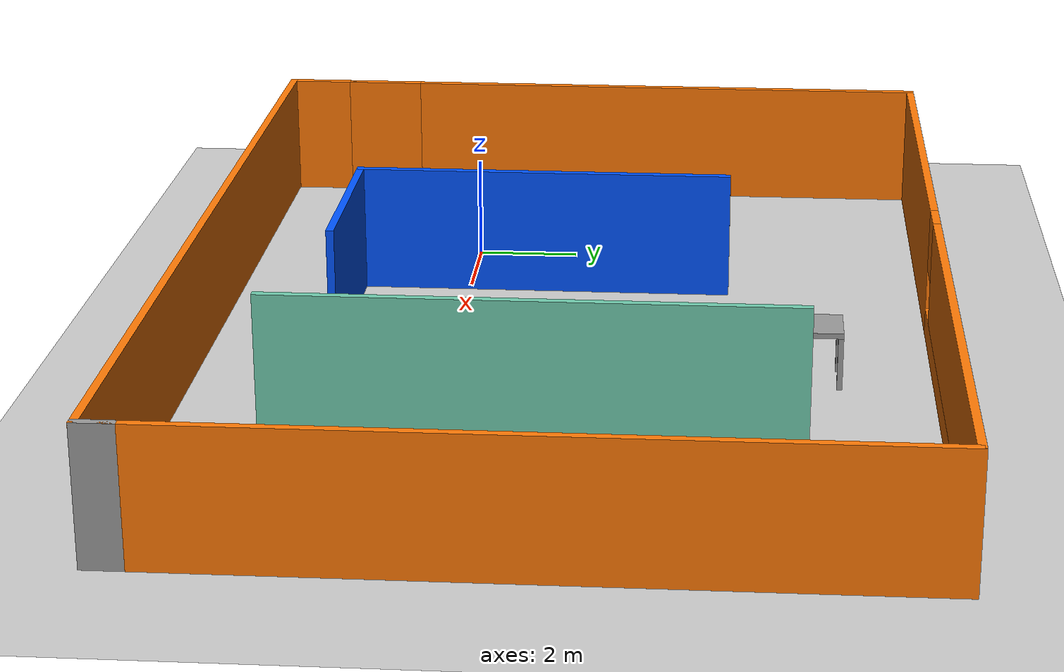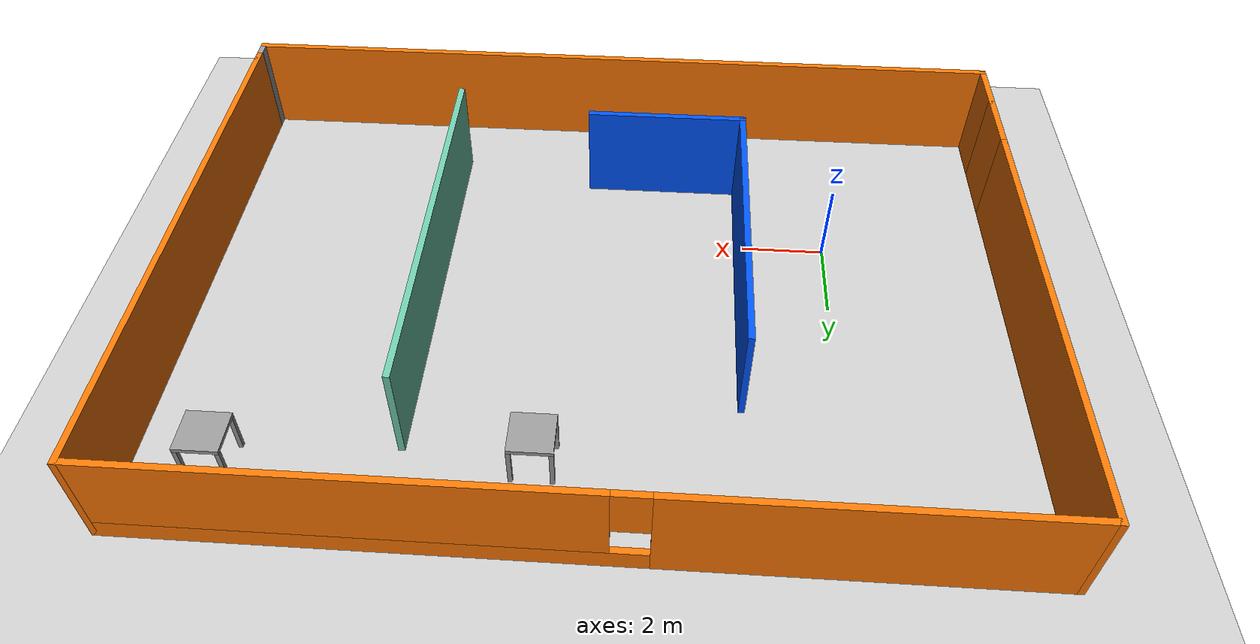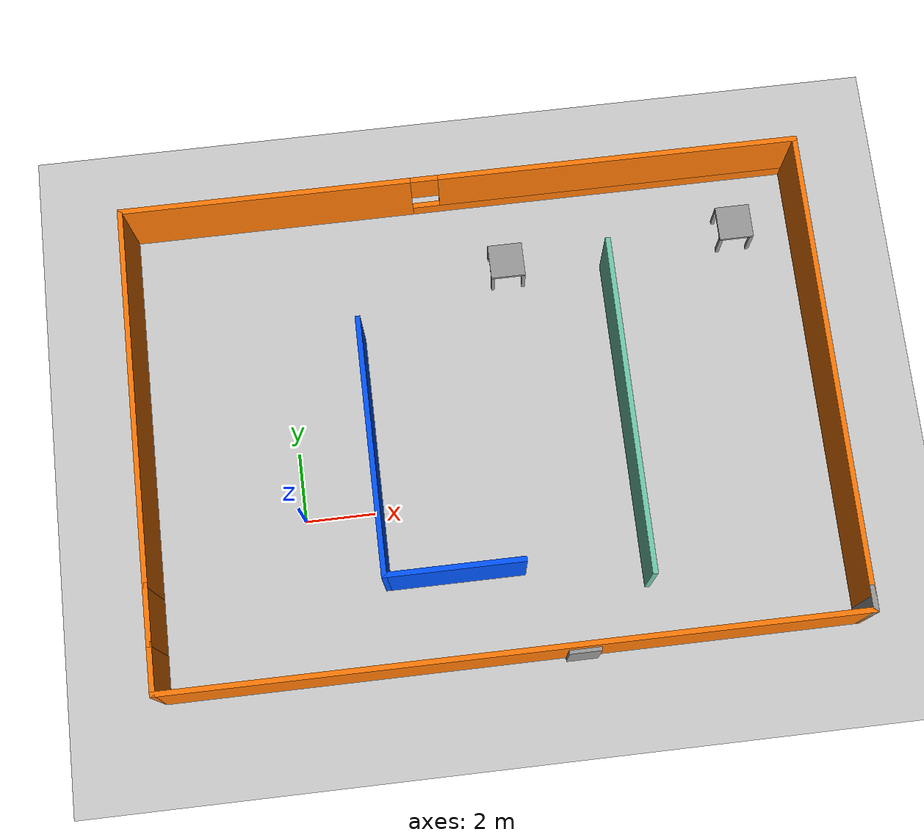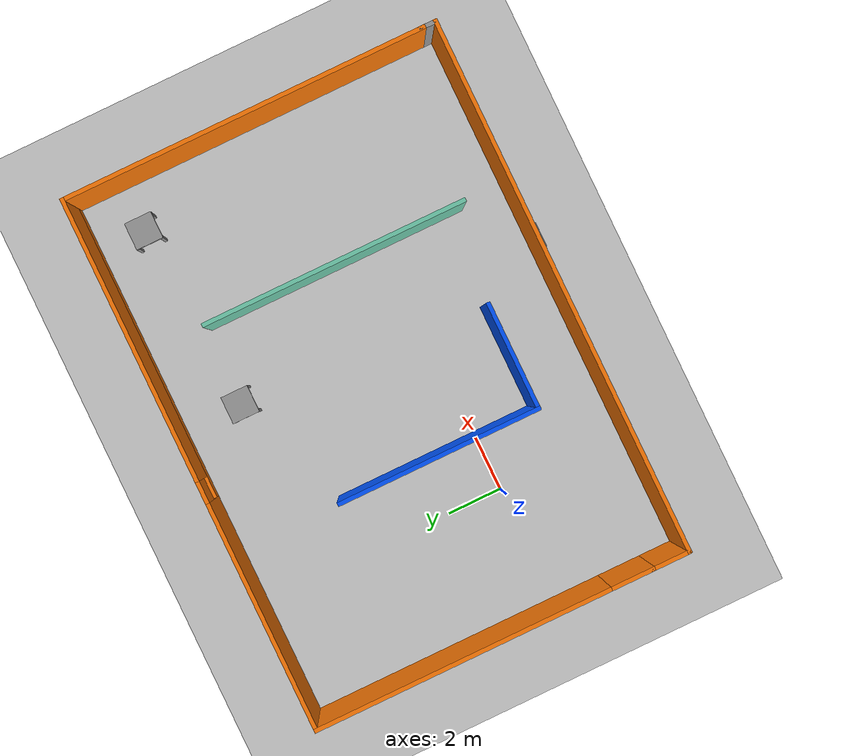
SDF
<sdf version="1.6">
 <world name="default">
  <light name="sun" type="directional">
   <pose>0 0 10 0 -0 0</pose>
   <diffuse>0.8 0.8 0.8 1</diffuse>
   <specular>0.2 0.2 0.2 1</specular>
   <attenuation>
    <range>1000</range>
    <constant>0.9</constant>
    <linear>0.01</linear>
    <quadratic>0.001</quadratic>
   </attenuation>
   <direction>-0.5 0.1 -0.9</direction>
  </light>
  <model name="ground_plane">
   <static>1</static>
   <link name="link">
    <collision name="collision">
     <geometry><plane><normal>0 0 1</normal><size>100 100</size></plane></geometry>
     <surface>
      <contact><collide_bitmask>65535</collide_bitmask></contact>
      <friction><ode><mu>100</mu><mu2>50</mu2></ode></friction>
     </surface>
    </collision>
    <visual name="visual">
     <cast_shadows>0</cast_shadows>
     <geometry><plane><normal>0 0 1</normal><size>100 100</size></plane></geometry>
     <material>
      <script><uri>file://media/materials/scripts/gazebo.material</uri><name>Gazebo/Grey</name></script>
     </material>
    </visual>
   </link>
  </model>
  <gravity>0 0 -9.8</gravity>
  <magnetic_field>6e-06 2.3e-05 -4.2e-05</magnetic_field>
  <atmosphere type="adiabatic"/>
  <physics name="default_physics" default="0" type="ode">
   <max_step_size>0.001</max_step_size>
   <real_time_factor>1</real_time_factor>
   <real_time_update_rate>1000</real_time_update_rate>
  </physics>
  <scene><ambient>0.4 0.4 0.4 1</ambient><background>0.7 0.7 0.7 1</background><shadows>1</shadows></scene>
  <spherical_coordinates>
   <surface_model>EARTH_WGS84</surface_model>
   <latitude_deg>0</latitude_deg>
   <longitude_deg>0</longitude_deg>
   <elevation>0</elevation>
   <heading_deg>0</heading_deg>
  </spherical_coordinates>
  <model name="room">
   <pose>5.50005 2.2334 0 0 -0 0</pose>
   <link name="Door_0">
    <collision name="Door_0_Collision">
     <geometry><box><size>0.9 0.17 2</size></box></geometry>
     <pose>0 0 1 0 -0 0</pose>
    </collision>
    <visual name="Door_0_Visual">
     <pose>0 0 1 0 -0 0</pose>
     <geometry><box><size>0.9 0.17 2</size></box></geometry>
     <material>
      <script><uri>file://media/materials/scripts/gazebo.material</uri><name>Gazebo/Grey</name></script>
     </material>
    </visual>
    <pose>1.89637 -7.00127 0 0 -0 0</pose>
   </link>
   <link name="Wall_10">
    <collision name="Wall_10_Collision">
     <geometry><box><size>11 0.15 2.5</size></box></geometry>
     <pose>0 0 1.25 0 -0 0</pose>
    </collision>
    <visual name="Wall_10_Visual">
     <pose>0 0 1.25 0 -0 0</pose>
     <geometry><box><size>11 0.15 2.5</size></box></geometry>
     <material>
      <script><uri>file://media/materials/scripts/gazebo.material</uri><name>Gazebo/Grey</name></script>
      <ambient>0.996078 0.47451 0.0196078 1</ambient>
     </material>
     <meta><layer>0</layer></meta>
    </visual>
    <pose>-9.8 1.475 0 0 -0 1.5708</pose>
   </link>
   <link name="Wall_11">
    <pose>0 6.9 0 0 -0 0</pose>
    <visual name="Wall_11_Visual_0">
     <pose>-5.64798 0 1.25 0 -0 0</pose>
     <geometry><box><size>8.45404 0.15 2.5</size></box></geometry>
     <material>
      <script><uri>file://media/materials/scripts/gazebo.material</uri><name>Gazebo/Grey</name></script>
      <ambient>0.996078 0.47451 0.0196078 1</ambient>
     </material>
     <meta><layer>0</layer></meta>
    </visual>
    <collision name="Wall_11_Collision_0">
     <geometry><box><size>8.45404 0.15 2.5</size></box></geometry>
     <pose>-5.64798 0 1.25 0 -0 0</pose>
    </collision>
    <visual name="Wall_11_Visual_1">
     <pose>4.22702 0 0.25 0 -0 0</pose>
     <geometry><box><size>11.296 0.15 0.5</size></box></geometry>
     <material>
      <script><uri>file://media/materials/scripts/gazebo.material</uri><name>Gazebo/Grey</name></script>
      <ambient>0.996078 0.47451 0.0196078 1</ambient>
     </material>
     <meta><layer>0</layer></meta>
    </visual>
    <collision name="Wall_11_Collision_1">
     <geometry><box><size>11.296 0.15 0.5</size></box></geometry>
     <pose>4.22702 0 0.25 0 -0 0</pose>
    </collision>
    <visual name="Wall_11_Visual_2">
     <pose>4.62702 0 1.5 0 -0 0</pose>
     <geometry><box><size>10.496 0.15 2</size></box></geometry>
     <material>
      <script><uri>file://media/materials/scripts/gazebo.material</uri><name>Gazebo/Grey</name></script>
      <ambient>0.996078 0.47451 0.0196078 1</ambient>
     </material>
     <meta><layer>0</layer></meta>
    </visual>
    <collision name="Wall_11_Collision_2">
     <geometry><box><size>10.496 0.15 2</size></box></geometry>
     <pose>4.62702 0 1.5 0 -0 0</pose>
    </collision>
    <visual name="Wall_11_Visual_3">
     <pose>-1.02096 0 1.9 0 -0 0</pose>
     <geometry><box><size>0.8 0.15 1.2</size></box></geometry>
     <material>
      <script><uri>file://media/materials/scripts/gazebo.material</uri><name>Gazebo/Grey</name></script>
      <ambient>0.996078 0.47451 0.0196078 1</ambient>
     </material>
     <meta><layer>0</layer></meta>
    </visual>
    <collision name="Wall_11_Collision_3">
     <geometry><box><size>0.8 0.15 1.2</size></box></geometry>
     <pose>-1.02096 0 1.9 0 -0 0</pose>
    </collision>
   </link>
   <link name="Wall_12">
    <collision name="Wall_12_Collision">
     <geometry><box><size>13.5 0.15 2.5</size></box></geometry>
     <pose>0 0 1.25 0 -0 0</pose>
    </collision>
    <visual name="Wall_12_Visual">
     <pose>0 0 1.25 0 -0 0</pose>
     <geometry><box><size>13.5 0.15 2.5</size></box></geometry>
     <material>
      <script><uri>file://media/materials/scripts/gazebo.material</uri><name>Gazebo/Grey</name></script>
      <ambient>0.996078 0.47451 0.0196078 1</ambient>
     </material>
     <meta><layer>0</layer></meta>
    </visual>
    <pose>9.8 0.225 0 0 0 -1.5708</pose>
   </link>
   <link name="Wall_14">
    <collision name="Wall_14_Collision">
     <geometry><box><size>7.5 0.15 2.5</size></box></geometry>
     <pose>0 0 1.25 0 -0 0</pose>
    </collision>
    <visual name="Wall_14_Visual">
     <pose>0 0 1.25 0 -0 0</pose>
     <geometry><box><size>7.5 0.15 2.5</size></box></geometry>
     <material>
      <script><uri>file://media/materials/scripts/gazebo.material</uri><name>Gazebo/Grey</name></script>
      <ambient>0 0.333333 1 1</ambient>
     </material>
     <meta><layer>0</layer></meta>
    </visual>
    <pose>-3.3266 -0.747922 0 0 0 -1.5708</pose>
   </link>
   <link name="Wall_15">
    <collision name="Wall_15_Collision">
     <geometry><box><size>4 0.15 2.5</size></box></geometry>
     <pose>0 0 1.25 0 -0 0</pose>
    </collision>
    <visual name="Wall_15_Visual">
     <pose>0 0 1.25 0 -0 0</pose>
     <geometry><box><size>4 0.15 2.5</size></box></geometry>
     <material>
      <script><uri>file://media/materials/scripts/gazebo.material</uri><name>Gazebo/Grey</name></script>
      <ambient>0 0.333333 1 1</ambient>
     </material>
     <meta><layer>0</layer></meta>
    </visual>
    <pose>-1.4016 -4.42292 0 0 -0 0</pose>
   </link>
   <link name="Wall_17">
    <collision name="Wall_17_Collision">
     <geometry><box><size>9.75 0.15 2.5</size></box></geometry>
     <pose>0 0 1.25 0 -0 0</pose>
    </collision>
    <visual name="Wall_17_Visual">
     <pose>0 0 1.25 0 -0 0</pose>
     <geometry><box><size>9.75 0.15 2.5</size></box></geometry>
     <material>
      <script><uri>file://media/materials/scripts/gazebo.material</uri><name>Gazebo/Grey</name></script>
      <ambient>0.435294 0.796078 0.67451 1</ambient>
     </material>
     <meta><layer>0</layer></meta>
    </visual>
    <pose>4.01379 -0.367201 0 0 0 -1.5708</pose>
   </link>
   <link name="Wall_19">
    <collision name="Wall_19_Collision">
     <geometry><box><size>19.75 0.15 2.5</size></box></geometry>
     <pose>0 0 1.25 0 -0 0</pose>
    </collision>
    <visual name="Wall_19_Visual">
     <pose>0 0 1.25 0 -0 0</pose>
     <geometry><box><size>19.75 0.15 2.5</size></box></geometry>
     <material>
      <script><uri>file://media/materials/scripts/gazebo.material</uri><name>Gazebo/Grey</name></script>
      <ambient>0.996078 0.47451 0.0196078 1</ambient>
     </material>
     <meta><layer>0</layer></meta>
    </visual>
    <pose>0 -6.9 0 0 -0 0</pose>
   </link>
   <link name="Wall_20">
    <collision name="Wall_20_Collision">
     <geometry><box><size>0.75 0.15 2.5</size></box></geometry>
     <pose>0 0 1.25 0 -0 0</pose>
    </collision>
    <visual name="Wall_20_Visual">
     <pose>0 0 1.25 0 -0 0</pose>
     <geometry><box><size>0.75 0.15 2.5</size></box></geometry>
     <material>
      <script><uri>file://media/materials/scripts/gazebo.material</uri><name>Gazebo/Grey</name></script>
      <ambient>1 1 1 1</ambient>
     </material>
     <meta><layer>0</layer></meta>
    </visual>
    <pose>9.8 -6.6 0 0 -0 1.5708</pose>
   </link>
   <link name="Wall_7">
    <collision name="Wall_7_Collision">
     <geometry><box><size>1.5 0.15 2.5</size></box></geometry>
     <pose>0 0 1.25 0 -0 0</pose>
    </collision>
    <visual name="Wall_7_Visual">
     <pose>0 0 1.25 0 -0 0</pose>
     <geometry><box><size>1.5 0.15 2.5</size></box></geometry>
     <material>
      <script><uri>file://media/materials/scripts/gazebo.material</uri><name>Gazebo/Grey</name></script>
      <ambient>0.996078 0.47451 0.0196078 1</ambient>
     </material>
     <meta><layer>0</layer></meta>
    </visual>
    <pose>-9.8 -6.225 0 0 -0 1.5708</pose>
   </link>
   <link name="Wall_9">
    <collision name="Wall_9_Collision">
     <geometry><box><size>1.75 0.15 2.5</size></box></geometry>
     <pose>0 0 1.25 0 -0 0</pose>
    </collision>
    <visual name="Wall_9_Visual">
     <pose>0 0 1.25 0 -0 0</pose>
     <geometry><box><size>1.75 0.15 2.5</size></box></geometry>
     <material>
      <script><uri>file://media/materials/scripts/gazebo.material</uri><name>Gazebo/Grey</name></script>
      <ambient>0.996078 0.47451 0.0196078 1</ambient>
     </material>
     <meta><layer>0</layer></meta>
    </visual>
    <pose>-9.8 -4.75 0 0 -0 1.5708</pose>
   </link>
   <static>1</static>
  </model>
  <model name="Table">
   <link name="link_0">
    <pose>-0.45 -0.45 -0.11 0 -0 0</pose>
    <inertial>
     <mass>1</mass>
     <inertia>
      <ixx>0.166667</ixx>
      <ixy>0</ixy>
      <ixz>0</ixz>
      <iyy>0.166667</iyy>
      <iyz>0</iyz>
      <izz>0.166667</izz>
     </inertia>
    </inertial>
    <visual name="visual">
     <geometry><box><size>0.1 0.1 1</size></box></geometry>
     <material>
      <lighting>1</lighting>
      <script><uri>file://media/materials/scripts/gazebo.material</uri><name>Gazebo/Grey</name></script>
      <shader type="pixel"><normal_map>__default__</normal_map></shader>
      <ambient>0.3 0.3 0.3 1</ambient>
      <diffuse>0.7 0.7 0.7 1</diffuse>
      <specular>0.01 0.01 0.01 1</specular>
      <emissive>0 0 0 1</emissive>
     </material>
    </visual>
    <collision name="collision">
     <geometry><box><size>0.1 0.1 1</size></box></geometry>
     <surface>
      <friction>
       <ode><mu>1</mu><mu2>1</mu2><fdir1>0 0 0</fdir1><slip1>0</slip1><slip2>0</slip2></ode>
       <torsional>
        <coefficient>1</coefficient>
        <patch_radius>0</patch_radius>
        <surface_radius>0</surface_radius>
        <use_patch_radius>1</use_patch_radius>
        <ode><slip>0</slip></ode>
       </torsional>
      </friction>
      <bounce><restitution_coefficient>0</restitution_coefficient><threshold>1e+06</threshold></bounce>
      <contact>
       <collide_without_contact>0</collide_without_contact>
       <collide_without_contact_bitmask>1</collide_without_contact_bitmask>
       <collide_bitmask>1</collide_bitmask>
       <ode>
        <soft_cfm>0</soft_cfm>
        <soft_erp>0.2</soft_erp>
        <kp>1e+13</kp>
        <kd>1</kd>
        <max_vel>0.01</max_vel>
        <min_depth>0</min_depth>
       </ode>
       <bullet>
        <split_impulse>1</split_impulse>
        <split_impulse_penetration_threshold>-0.01</split_impulse_penetration_threshold>
        <soft_cfm>0</soft_cfm>
        <soft_erp>0.2</soft_erp>
        <kp>1e+13</kp>
        <kd>1</kd>
       </bullet>
      </contact>
     </surface>
    </collision>
   </link>
   <link name="link_0_clone">
    <pose>0.449999 -0.45 -0.11 0 -0 0</pose>
    <inertial>
     <mass>1</mass>
     <inertia>
      <ixx>0.166667</ixx>
      <ixy>0</ixy>
      <ixz>0</ixz>
      <iyy>0.166667</iyy>
      <iyz>0</iyz>
      <izz>0.166667</izz>
     </inertia>
    </inertial>
    <visual name="visual">
     <geometry><box><size>0.1 0.1 1</size></box></geometry>
     <material>
      <lighting>1</lighting>
      <script><uri>file://media/materials/scripts/gazebo.material</uri><name>Gazebo/Grey</name></script>
      <shader type="pixel"><normal_map>__default__</normal_map></shader>
      <ambient>0.3 0.3 0.3 1</ambient>
      <diffuse>0.7 0.7 0.7 1</diffuse>
      <specular>0.01 0.01 0.01 1</specular>
      <emissive>0 0 0 1</emissive>
     </material>
    </visual>
    <collision name="collision">
     <geometry><box><size>0.1 0.1 1</size></box></geometry>
     <surface>
      <friction>
       <ode><mu>1</mu><mu2>1</mu2><fdir1>0 0 0</fdir1><slip1>0</slip1><slip2>0</slip2></ode>
       <torsional>
        <coefficient>1</coefficient>
        <patch_radius>0</patch_radius>
        <surface_radius>0</surface_radius>
        <use_patch_radius>1</use_patch_radius>
        <ode><slip>0</slip></ode>
       </torsional>
      </friction>
      <bounce><restitution_coefficient>0</restitution_coefficient><threshold>1e+06</threshold></bounce>
      <contact>
       <collide_without_contact>0</collide_without_contact>
       <collide_without_contact_bitmask>1</collide_without_contact_bitmask>
       <collide_bitmask>1</collide_bitmask>
       <ode>
        <soft_cfm>0</soft_cfm>
        <soft_erp>0.2</soft_erp>
        <kp>1e+13</kp>
        <kd>1</kd>
        <max_vel>0.01</max_vel>
        <min_depth>0</min_depth>
       </ode>
       <bullet>
        <split_impulse>1</split_impulse>
        <split_impulse_penetration_threshold>-0.01</split_impulse_penetration_threshold>
        <soft_cfm>0</soft_cfm>
        <soft_erp>0.2</soft_erp>
        <kp>1e+13</kp>
        <kd>1</kd>
       </bullet>
      </contact>
     </surface>
    </collision>
   </link>
   <link name="link_0_clone_0">
    <pose>0.449999 0.45 -0.11 0 -0 0</pose>
    <inertial>
     <mass>1</mass>
     <inertia>
      <ixx>0.166667</ixx>
      <ixy>0</ixy>
      <ixz>0</ixz>
      <iyy>0.166667</iyy>
      <iyz>0</iyz>
      <izz>0.166667</izz>
     </inertia>
    </inertial>
    <visual name="visual">
     <geometry><box><size>0.1 0.1 1</size></box></geometry>
     <material>
      <lighting>1</lighting>
      <script><uri>file://media/materials/scripts/gazebo.material</uri><name>Gazebo/Grey</name></script>
      <shader type="pixel"><normal_map>__default__</normal_map></shader>
      <ambient>0.3 0.3 0.3 1</ambient>
      <diffuse>0.7 0.7 0.7 1</diffuse>
      <specular>0.01 0.01 0.01 1</specular>
      <emissive>0 0 0 1</emissive>
     </material>
    </visual>
    <collision name="collision">
     <geometry><box><size>0.1 0.1 1</size></box></geometry>
     <surface>
      <friction>
       <ode><mu>1</mu><mu2>1</mu2><fdir1>0 0 0</fdir1><slip1>0</slip1><slip2>0</slip2></ode>
       <torsional>
        <coefficient>1</coefficient>
        <patch_radius>0</patch_radius>
        <surface_radius>0</surface_radius>
        <use_patch_radius>1</use_patch_radius>
        <ode><slip>0</slip></ode>
       </torsional>
      </friction>
      <bounce><restitution_coefficient>0</restitution_coefficient><threshold>1e+06</threshold></bounce>
      <contact>
       <collide_without_contact>0</collide_without_contact>
       <collide_without_contact_bitmask>1</collide_without_contact_bitmask>
       <collide_bitmask>1</collide_bitmask>
       <ode>
        <soft_cfm>0</soft_cfm>
        <soft_erp>0.2</soft_erp>
        <kp>1e+13</kp>
        <kd>1</kd>
        <max_vel>0.01</max_vel>
        <min_depth>0</min_depth>
       </ode>
       <bullet>
        <split_impulse>1</split_impulse>
        <split_impulse_penetration_threshold>-0.01</split_impulse_penetration_threshold>
        <soft_cfm>0</soft_cfm>
        <soft_erp>0.2</soft_erp>
        <kp>1e+13</kp>
        <kd>1</kd>
       </bullet>
      </contact>
     </surface>
    </collision>
   </link>
   <link name="link_0_clone_1">
    <pose>-0.45 0.45 -0.11 0 -0 0</pose>
    <inertial>
     <mass>1</mass>
     <inertia>
      <ixx>0.166667</ixx>
      <ixy>0</ixy>
      <ixz>0</ixz>
      <iyy>0.166667</iyy>
      <iyz>0</iyz>
      <izz>0.166667</izz>
     </inertia>
    </inertial>
    <visual name="visual">
     <geometry><box><size>0.1 0.1 1</size></box></geometry>
     <material>
      <lighting>1</lighting>
      <script><uri>file://media/materials/scripts/gazebo.material</uri><name>Gazebo/Grey</name></script>
      <shader type="pixel"><normal_map>__default__</normal_map></shader>
      <ambient>0.3 0.3 0.3 1</ambient>
      <diffuse>0.7 0.7 0.7 1</diffuse>
      <specular>0.01 0.01 0.01 1</specular>
      <emissive>0 0 0 1</emissive>
     </material>
    </visual>
    <collision name="collision">
     <geometry><box><size>0.1 0.1 1</size></box></geometry>
     <surface>
      <friction>
       <ode><mu>1</mu><mu2>1</mu2><fdir1>0 0 0</fdir1><slip1>0</slip1><slip2>0</slip2></ode>
       <torsional>
        <coefficient>1</coefficient>
        <patch_radius>0</patch_radius>
        <surface_radius>0</surface_radius>
        <use_patch_radius>1</use_patch_radius>
        <ode><slip>0</slip></ode>
       </torsional>
      </friction>
      <bounce><restitution_coefficient>0</restitution_coefficient><threshold>1e+06</threshold></bounce>
      <contact>
       <collide_without_contact>0</collide_without_contact>
       <collide_without_contact_bitmask>1</collide_without_contact_bitmask>
       <collide_bitmask>1</collide_bitmask>
       <ode>
        <soft_cfm>0</soft_cfm>
        <soft_erp>0.2</soft_erp>
        <kp>1e+13</kp>
        <kd>1</kd>
        <max_vel>0.01</max_vel>
        <min_depth>0</min_depth>
       </ode>
       <bullet>
        <split_impulse>1</split_impulse>
        <split_impulse_penetration_threshold>-0.01</split_impulse_penetration_threshold>
        <soft_cfm>0</soft_cfm>
        <soft_erp>0.2</soft_erp>
        <kp>1e+13</kp>
        <kd>1</kd>
       </bullet>
      </contact>
     </surface>
    </collision>
   </link>
   <link name="link_1">
    <pose>-0 0 0.44 0 -0 0</pose>
    <inertial>
     <mass>1</mass>
     <inertia>
      <ixx>0.166667</ixx>
      <ixy>0</ixy>
      <ixz>0</ixz>
      <iyy>0.166667</iyy>
      <iyz>0</iyz>
      <izz>0.166667</izz>
     </inertia>
    </inertial>
    <visual name="visual">
     <geometry><box><size>1 1 0.1</size></box></geometry>
     <material>
      <lighting>1</lighting>
      <script><uri>file://media/materials/scripts/gazebo.material</uri><name>Gazebo/Grey</name></script>
      <shader type="pixel"><normal_map>__default__</normal_map></shader>
      <ambient>0.3 0.3 0.3 1</ambient>
      <diffuse>0.7 0.7 0.7 1</diffuse>
      <specular>0.01 0.01 0.01 1</specular>
      <emissive>0 0 0 1</emissive>
     </material>
    </visual>
    <collision name="collision">
     <geometry><box><size>1 1 0.1</size></box></geometry>
     <surface>
      <friction>
       <ode><mu>1</mu><mu2>1</mu2><fdir1>0 0 0</fdir1><slip1>0</slip1><slip2>0</slip2></ode>
       <torsional>
        <coefficient>1</coefficient>
        <patch_radius>0</patch_radius>
        <surface_radius>0</surface_radius>
        <use_patch_radius>1</use_patch_radius>
        <ode><slip>0</slip></ode>
       </torsional>
      </friction>
      <bounce><restitution_coefficient>0</restitution_coefficient><threshold>1e+06</threshold></bounce>
      <contact>
       <collide_without_contact>0</collide_without_contact>
       <collide_without_contact_bitmask>1</collide_without_contact_bitmask>
       <collide_bitmask>1</collide_bitmask>
       <ode>
        <soft_cfm>0</soft_cfm>
        <soft_erp>0.2</soft_erp>
        <kp>1e+13</kp>
        <kd>1</kd>
        <max_vel>0.01</max_vel>
        <min_depth>0</min_depth>
       </ode>
       <bullet>
        <split_impulse>1</split_impulse>
        <split_impulse_penetration_threshold>-0.01</split_impulse_penetration_threshold>
        <soft_cfm>0</soft_cfm>
        <soft_erp>0.2</soft_erp>
        <kp>1e+13</kp>
        <kd>1</kd>
       </bullet>
      </contact>
     </surface>
    </collision>
   </link>
   <joint name="link_1_JOINT_0" type="fixed">
    <parent>link_1</parent>
    <child>link_0</child>
    <physics>
     <ode><limit><cfm>0</cfm><erp>0.2</erp></limit><suspension><cfm>0</cfm><erp>0.2</erp></suspension></ode>
    </physics>
   </joint>
   <joint name="link_1_JOINT_1" type="fixed">
    <parent>link_1</parent>
    <child>link_0_clone</child>
    <physics>
     <ode><limit><cfm>0</cfm><erp>0.2</erp></limit><suspension><cfm>0</cfm><erp>0.2</erp></suspension></ode>
    </physics>
   </joint>
   <joint name="link_1_JOINT_2" type="fixed">
    <parent>link_1</parent>
    <child>link_0_clone_1</child>
    <pose>0 0 0 -0.05 0 0</pose>
    <physics>
     <ode><limit><cfm>0</cfm><erp>0.2</erp></limit><suspension><cfm>0</cfm><erp>0.2</erp></suspension></ode>
    </physics>
   </joint>
   <joint name="link_1_JOINT_3" type="fixed">
    <parent>link_1</parent>
    <child>link_0_clone_0</child>
    <pose>0 0 0 -0.02 0 0</pose>
    <physics>
     <ode><limit><cfm>0</cfm><erp>0.2</erp></limit><suspension><cfm>0</cfm><erp>0.2</erp></suspension></ode>
    </physics>
   </joint>
   <static>0</static>
   <pose>13.4593 7.289 0.609999 -0 3e-06 -3.7e-05</pose>
  </model>
  <model name="Table_0">
   <link name="link_0">
    <pose>-0.45 -0.45 -0.11 0 -0 0</pose>
    <inertial>
     <mass>1</mass>
     <inertia>
      <ixx>0.166667</ixx>
      <ixy>0</ixy>
      <ixz>0</ixz>
      <iyy>0.166667</iyy>
      <iyz>0</iyz>
      <izz>0.166667</izz>
     </inertia>
    </inertial>
    <visual name="visual">
     <geometry><box><size>0.1 0.1 1</size></box></geometry>
     <material>
      <lighting>1</lighting>
      <script><uri>file://media/materials/scripts/gazebo.material</uri><name>Gazebo/Grey</name></script>
      <shader type="pixel"><normal_map>__default__</normal_map></shader>
      <ambient>0.3 0.3 0.3 1</ambient>
      <diffuse>0.7 0.7 0.7 1</diffuse>
      <specular>0.01 0.01 0.01 1</specular>
      <emissive>0 0 0 1</emissive>
     </material>
    </visual>
    <collision name="collision">
     <geometry><box><size>0.1 0.1 1</size></box></geometry>
     <surface>
      <friction>
       <ode><mu>1</mu><mu2>1</mu2><fdir1>0 0 0</fdir1><slip1>0</slip1><slip2>0</slip2></ode>
       <torsional>
        <coefficient>1</coefficient>
        <patch_radius>0</patch_radius>
        <surface_radius>0</surface_radius>
        <use_patch_radius>1</use_patch_radius>
        <ode><slip>0</slip></ode>
       </torsional>
      </friction>
      <bounce><restitution_coefficient>0</restitution_coefficient><threshold>1e+06</threshold></bounce>
      <contact>
       <collide_without_contact>0</collide_without_contact>
       <collide_without_contact_bitmask>1</collide_without_contact_bitmask>
       <collide_bitmask>1</collide_bitmask>
       <ode>
        <soft_cfm>0</soft_cfm>
        <soft_erp>0.2</soft_erp>
        <kp>1e+13</kp>
        <kd>1</kd>
        <max_vel>0.01</max_vel>
        <min_depth>0</min_depth>
       </ode>
       <bullet>
        <split_impulse>1</split_impulse>
        <split_impulse_penetration_threshold>-0.01</split_impulse_penetration_threshold>
        <soft_cfm>0</soft_cfm>
        <soft_erp>0.2</soft_erp>
        <kp>1e+13</kp>
        <kd>1</kd>
       </bullet>
      </contact>
     </surface>
    </collision>
   </link>
   <link name="link_0_clone">
    <pose>0.449999 -0.45 -0.11 0 -0 0</pose>
    <inertial>
     <mass>1</mass>
     <inertia>
      <ixx>0.166667</ixx>
      <ixy>0</ixy>
      <ixz>0</ixz>
      <iyy>0.166667</iyy>
      <iyz>0</iyz>
      <izz>0.166667</izz>
     </inertia>
    </inertial>
    <visual name="visual">
     <geometry><box><size>0.1 0.1 1</size></box></geometry>
     <material>
      <lighting>1</lighting>
      <script><uri>file://media/materials/scripts/gazebo.material</uri><name>Gazebo/Grey</name></script>
      <shader type="pixel"><normal_map>__default__</normal_map></shader>
      <ambient>0.3 0.3 0.3 1</ambient>
      <diffuse>0.7 0.7 0.7 1</diffuse>
      <specular>0.01 0.01 0.01 1</specular>
      <emissive>0 0 0 1</emissive>
     </material>
    </visual>
    <collision name="collision">
     <geometry><box><size>0.1 0.1 1</size></box></geometry>
     <surface>
      <friction>
       <ode><mu>1</mu><mu2>1</mu2><fdir1>0 0 0</fdir1><slip1>0</slip1><slip2>0</slip2></ode>
       <torsional>
        <coefficient>1</coefficient>
        <patch_radius>0</patch_radius>
        <surface_radius>0</surface_radius>
        <use_patch_radius>1</use_patch_radius>
        <ode><slip>0</slip></ode>
       </torsional>
      </friction>
      <bounce><restitution_coefficient>0</restitution_coefficient><threshold>1e+06</threshold></bounce>
      <contact>
       <collide_without_contact>0</collide_without_contact>
       <collide_without_contact_bitmask>1</collide_without_contact_bitmask>
       <collide_bitmask>1</collide_bitmask>
       <ode>
        <soft_cfm>0</soft_cfm>
        <soft_erp>0.2</soft_erp>
        <kp>1e+13</kp>
        <kd>1</kd>
        <max_vel>0.01</max_vel>
        <min_depth>0</min_depth>
       </ode>
       <bullet>
        <split_impulse>1</split_impulse>
        <split_impulse_penetration_threshold>-0.01</split_impulse_penetration_threshold>
        <soft_cfm>0</soft_cfm>
        <soft_erp>0.2</soft_erp>
        <kp>1e+13</kp>
        <kd>1</kd>
       </bullet>
      </contact>
     </surface>
    </collision>
   </link>
   <link name="link_0_clone_0">
    <pose>0.449999 0.45 -0.11 0 -0 0</pose>
    <inertial>
     <mass>1</mass>
     <inertia>
      <ixx>0.166667</ixx>
      <ixy>0</ixy>
      <ixz>0</ixz>
      <iyy>0.166667</iyy>
      <iyz>0</iyz>
      <izz>0.166667</izz>
     </inertia>
    </inertial>
    <visual name="visual">
     <geometry><box><size>0.1 0.1 1</size></box></geometry>
     <material>
      <lighting>1</lighting>
      <script><uri>file://media/materials/scripts/gazebo.material</uri><name>Gazebo/Grey</name></script>
      <shader type="pixel"><normal_map>__default__</normal_map></shader>
      <ambient>0.3 0.3 0.3 1</ambient>
      <diffuse>0.7 0.7 0.7 1</diffuse>
      <specular>0.01 0.01 0.01 1</specular>
      <emissive>0 0 0 1</emissive>
     </material>
    </visual>
    <collision name="collision">
     <geometry><box><size>0.1 0.1 1</size></box></geometry>
     <surface>
      <friction>
       <ode><mu>1</mu><mu2>1</mu2><fdir1>0 0 0</fdir1><slip1>0</slip1><slip2>0</slip2></ode>
       <torsional>
        <coefficient>1</coefficient>
        <patch_radius>0</patch_radius>
        <surface_radius>0</surface_radius>
        <use_patch_radius>1</use_patch_radius>
        <ode><slip>0</slip></ode>
       </torsional>
      </friction>
      <bounce><restitution_coefficient>0</restitution_coefficient><threshold>1e+06</threshold></bounce>
      <contact>
       <collide_without_contact>0</collide_without_contact>
       <collide_without_contact_bitmask>1</collide_without_contact_bitmask>
       <collide_bitmask>1</collide_bitmask>
       <ode>
        <soft_cfm>0</soft_cfm>
        <soft_erp>0.2</soft_erp>
        <kp>1e+13</kp>
        <kd>1</kd>
        <max_vel>0.01</max_vel>
        <min_depth>0</min_depth>
       </ode>
       <bullet>
        <split_impulse>1</split_impulse>
        <split_impulse_penetration_threshold>-0.01</split_impulse_penetration_threshold>
        <soft_cfm>0</soft_cfm>
        <soft_erp>0.2</soft_erp>
        <kp>1e+13</kp>
        <kd>1</kd>
       </bullet>
      </contact>
     </surface>
    </collision>
   </link>
   <link name="link_0_clone_1">
    <pose>-0.45 0.45 -0.11 0 -0 0</pose>
    <inertial>
     <mass>1</mass>
     <inertia>
      <ixx>0.166667</ixx>
      <ixy>0</ixy>
      <ixz>0</ixz>
      <iyy>0.166667</iyy>
      <iyz>0</iyz>
      <izz>0.166667</izz>
     </inertia>
    </inertial>
    <visual name="visual">
     <geometry><box><size>0.1 0.1 1</size></box></geometry>
     <material>
      <lighting>1</lighting>
      <script><uri>file://media/materials/scripts/gazebo.material</uri><name>Gazebo/Grey</name></script>
      <shader type="pixel"><normal_map>__default__</normal_map></shader>
      <ambient>0.3 0.3 0.3 1</ambient>
      <diffuse>0.7 0.7 0.7 1</diffuse>
      <specular>0.01 0.01 0.01 1</specular>
      <emissive>0 0 0 1</emissive>
     </material>
    </visual>
    <collision name="collision">
     <geometry><box><size>0.1 0.1 1</size></box></geometry>
     <surface>
      <friction>
       <ode><mu>1</mu><mu2>1</mu2><fdir1>0 0 0</fdir1><slip1>0</slip1><slip2>0</slip2></ode>
       <torsional>
        <coefficient>1</coefficient>
        <patch_radius>0</patch_radius>
        <surface_radius>0</surface_radius>
        <use_patch_radius>1</use_patch_radius>
        <ode><slip>0</slip></ode>
       </torsional>
      </friction>
      <bounce><restitution_coefficient>0</restitution_coefficient><threshold>1e+06</threshold></bounce>
      <contact>
       <collide_without_contact>0</collide_without_contact>
       <collide_without_contact_bitmask>1</collide_without_contact_bitmask>
       <collide_bitmask>1</collide_bitmask>
       <ode>
        <soft_cfm>0</soft_cfm>
        <soft_erp>0.2</soft_erp>
        <kp>1e+13</kp>
        <kd>1</kd>
        <max_vel>0.01</max_vel>
        <min_depth>0</min_depth>
       </ode>
       <bullet>
        <split_impulse>1</split_impulse>
        <split_impulse_penetration_threshold>-0.01</split_impulse_penetration_threshold>
        <soft_cfm>0</soft_cfm>
        <soft_erp>0.2</soft_erp>
        <kp>1e+13</kp>
        <kd>1</kd>
       </bullet>
      </contact>
     </surface>
    </collision>
   </link>
   <link name="link_1">
    <pose>-0 0 0.44 0 -0 0</pose>
    <inertial>
     <mass>1</mass>
     <inertia>
      <ixx>0.166667</ixx>
      <ixy>0</ixy>
      <ixz>0</ixz>
      <iyy>0.166667</iyy>
      <iyz>0</iyz>
      <izz>0.166667</izz>
     </inertia>
    </inertial>
    <visual name="visual">
     <geometry><box><size>1 1 0.1</size></box></geometry>
     <material>
      <lighting>1</lighting>
      <script><uri>file://media/materials/scripts/gazebo.material</uri><name>Gazebo/Grey</name></script>
      <shader type="pixel"><normal_map>__default__</normal_map></shader>
      <ambient>0.3 0.3 0.3 1</ambient>
      <diffuse>0.7 0.7 0.7 1</diffuse>
      <specular>0.01 0.01 0.01 1</specular>
      <emissive>0 0 0 1</emissive>
     </material>
    </visual>
    <collision name="collision">
     <geometry><box><size>1 1 0.1</size></box></geometry>
     <surface>
      <friction>
       <ode><mu>1</mu><mu2>1</mu2><fdir1>0 0 0</fdir1><slip1>0</slip1><slip2>0</slip2></ode>
       <torsional>
        <coefficient>1</coefficient>
        <patch_radius>0</patch_radius>
        <surface_radius>0</surface_radius>
        <use_patch_radius>1</use_patch_radius>
        <ode><slip>0</slip></ode>
       </torsional>
      </friction>
      <bounce><restitution_coefficient>0</restitution_coefficient><threshold>1e+06</threshold></bounce>
      <contact>
       <collide_without_contact>0</collide_without_contact>
       <collide_without_contact_bitmask>1</collide_without_contact_bitmask>
       <collide_bitmask>1</collide_bitmask>
       <ode>
        <soft_cfm>0</soft_cfm>
        <soft_erp>0.2</soft_erp>
        <kp>1e+13</kp>
        <kd>1</kd>
        <max_vel>0.01</max_vel>
        <min_depth>0</min_depth>
       </ode>
       <bullet>
        <split_impulse>1</split_impulse>
        <split_impulse_penetration_threshold>-0.01</split_impulse_penetration_threshold>
        <soft_cfm>0</soft_cfm>
        <soft_erp>0.2</soft_erp>
        <kp>1e+13</kp>
        <kd>1</kd>
       </bullet>
      </contact>
     </surface>
    </collision>
   </link>
   <joint name="link_1_JOINT_0" type="fixed">
    <parent>link_1</parent>
    <child>link_0</child>
    <physics>
     <ode><limit><cfm>0</cfm><erp>0.2</erp></limit><suspension><cfm>0</cfm><erp>0.2</erp></suspension></ode>
    </physics>
   </joint>
   <joint name="link_1_JOINT_1" type="fixed">
    <parent>link_1</parent>
    <child>link_0_clone</child>
    <physics>
     <ode><limit><cfm>0</cfm><erp>0.2</erp></limit><suspension><cfm>0</cfm><erp>0.2</erp></suspension></ode>
    </physics>
   </joint>
   <joint name="link_1_JOINT_2" type="fixed">
    <parent>link_1</parent>
    <child>link_0_clone_1</child>
    <pose>0 0 0 -0.05 0 0</pose>
    <physics>
     <ode><limit><cfm>0</cfm><erp>0.2</erp></limit><suspension><cfm>0</cfm><erp>0.2</erp></suspension></ode>
    </physics>
   </joint>
   <joint name="link_1_JOINT_3" type="fixed">
    <parent>link_1</parent>
    <child>link_0_clone_0</child>
    <pose>0 0 0 -0.02 0 0</pose>
    <physics>
     <ode><limit><cfm>0</cfm><erp>0.2</erp></limit><suspension><cfm>0</cfm><erp>0.2</erp></suspension></ode>
    </physics>
   </joint>
   <static>0</static>
   <pose>6.62934 6.87977 0.609999 0 3e-06 -4.1e-05</pose>
  </model>
 </world>
</sdf>
